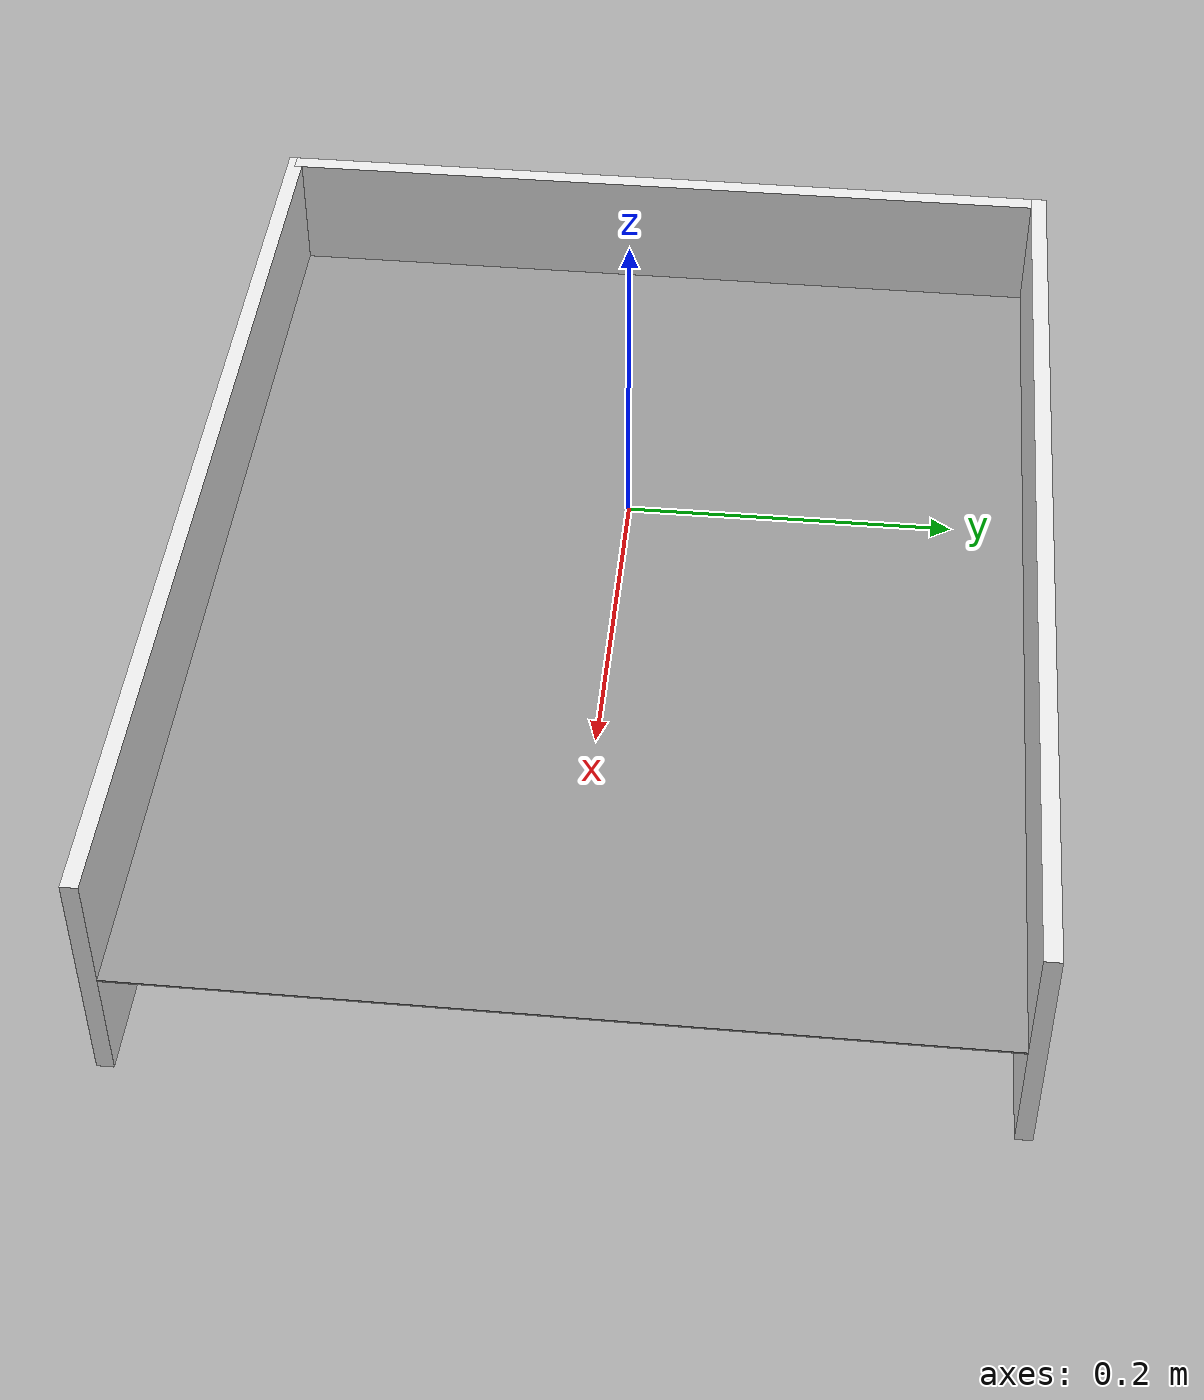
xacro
<?xml version="1.0" ?>

<!-- Generate URDF: -->
<!-- rosrun xacro xacro room_description.xacro > room_description.urdf -->

<robot name="room" xmlns:xacro="http://www.ros.org/wiki/xacro">

    <!-- Wall Parameters -->
    <xacro:property name="wall_l" value="0.01" />
    <xacro:property name="wall_h" value="0.15" />
    <xacro:property name="back_wall_w" value="0.5" />
    <xacro:property name="side_wall_w" value="0.65" />
    <xacro:property name="floor_h" value="0.001" />

    <!-- Floor Friction -->
    <xacro:property name="kp" value="100000.0" />  <!-- Contact stiffness -->
    <xacro:property name="kd" value="100000.0" />      <!-- Contact damping -->
    <xacro:property name="mu1" value="100000.0" /> <!-- Friction coefficient 1 -->
    <xacro:property name="mu2" value="100000.0" /> <!-- Friction coefficient 2 -->

    <!-- Define world link -->
    <link name="world"/>

    <!-- Make all objects stationary -->
    <gazebo>
        <static>true</static>
    </gazebo>

    <!-- Back Wall -->
    <link name="back_wall">
        <inertial>
            <origin xyz="0 0 0" rpy="0 0 0" />
            <mass value="1.0" />
            <inertia  ixx="1.0" ixy="0.0"  ixz="0.0"  iyy="1.0"  iyz="0.0"  izz="1.0" />
        </inertial>

        <visual>
            <origin xyz="${-back_wall_w/2 + 0.005} 0 0" rpy="0 0 0" />
            <geometry>
                <box size="${wall_l} ${back_wall_w} ${wall_h}" />
            </geometry>
        </visual>

        <collision>
            <origin xyz="${-back_wall_w/2 + 0.005} 0 0" rpy="0 0 0" />
            <geometry>
                <box size="${wall_l} ${back_wall_w} ${wall_h}" />
            </geometry>
        </collision>
    </link>

    <!-- Fix Back Wall to world -->
    <joint name="back_wall_fixed_joint" type="fixed">
        <parent link="world"/>
        <child link="back_wall"/>
    </joint>

    <!-- Gazebo properties -->
    <gazebo reference="back_wall">
        <material>Gazebo/White</material>
    </gazebo>

    <!-- Left Wall -->
    <link name="left_wall">
        <inertial>
            <origin xyz="0 0 0" rpy="0 0 0" />
            <mass value="1.0" />
            <inertia  ixx="1.0" ixy="0.0"  ixz="0.0"  iyy="1.0"  iyz="0.0"  izz="1.0" />
        </inertial>

        <visual>
            <origin xyz="0.075 ${back_wall_w/2} 0" rpy="0 0 ${pi/2}" />
            <geometry>
                <box size="${wall_l} ${side_wall_w} ${wall_h}" />
            </geometry>
        </visual>

        <collision>
            <origin xyz="0.075 ${back_wall_w/2} 0" rpy="0 0 ${pi/2}" />
            <geometry>
                <box size="${wall_l} ${side_wall_w} ${wall_h}" />
            </geometry>
        </collision>
    </link>

    <!-- Fix Left Wall to world -->
    <joint name="left_wall_fixed_joint" type="fixed">
        <parent link="world"/>
        <child link="left_wall"/>
    </joint>

    <!-- Gazebo properties -->
    <gazebo reference="left_wall">
        <material>Gazebo/White</material>
    </gazebo>

    <!-- Right Wall -->
    <link name="right_wall">
        <inertial>
            <origin xyz="0 0 0" rpy="0 0 0" />
            <mass value="1.0" />
            <inertia  ixx="1.0" ixy="0.0"  ixz="0.0"  iyy="1.0"  iyz="0.0"  izz="1.0" />
        </inertial>

        <visual>
            <origin xyz="0.075 ${-back_wall_w/2} 0" rpy="0 0 ${pi/2}" />
            <geometry>
                <box size="${wall_l} ${side_wall_w} ${wall_h}" />
            </geometry>
        </visual>

        <collision>
            <origin xyz="0.075 ${-back_wall_w/2} 0" rpy="0 0 ${pi/2}" />
            <geometry>
                <box size="${wall_l} ${side_wall_w} ${wall_h}" />
            </geometry>
        </collision>
    </link>

    <!-- Fix Right Wall to world -->
    <joint name="right_wall_fixed_joint" type="fixed">
        <parent link="world"/>
        <child link="right_wall"/>
    </joint>

    <!-- Gazebo properties -->
    <gazebo reference="right_wall">
        <material>Gazebo/White</material>
    </gazebo>

    <!-- Floor -->
    <link name="floor">
        <inertial>
            <origin xyz="0 0 0" rpy="0 0 0" />
            <mass value="1.0" />
            <inertia  ixx="1.0" ixy="0.0"  ixz="0.0"  iyy="1.0"  iyz="0.0"  izz="1.0" />
        </inertial>

        <visual>
            <origin xyz="0.075 0 0" rpy="0 0 0" />
            <geometry>
                <box size="${side_wall_w} ${back_wall_w} ${floor_h}" />
            </geometry>
        </visual>

        <collision>
            <origin xyz="0.075 0 0" rpy="0 0 0" />
            <geometry>
                <box size="${side_wall_w} ${back_wall_w} ${floor_h}" />
            </geometry>
        </collision>
    </link>

    <!-- Fix Floor to world -->
    <joint name="floor_fixed_joint" type="fixed">
        <parent link="world"/>
        <child link="floor"/>
    </joint>

    <!-- Gazebo properties -->
    <gazebo reference="floor">
        <kp>${kp}</kp>
        <kd>${kd}</kd>
        <mu1>${mu1}</mu1>
        <mu2>${mu2}</mu2>
        <material>Gazebo/Grey</material>
    </gazebo>

</robot>
